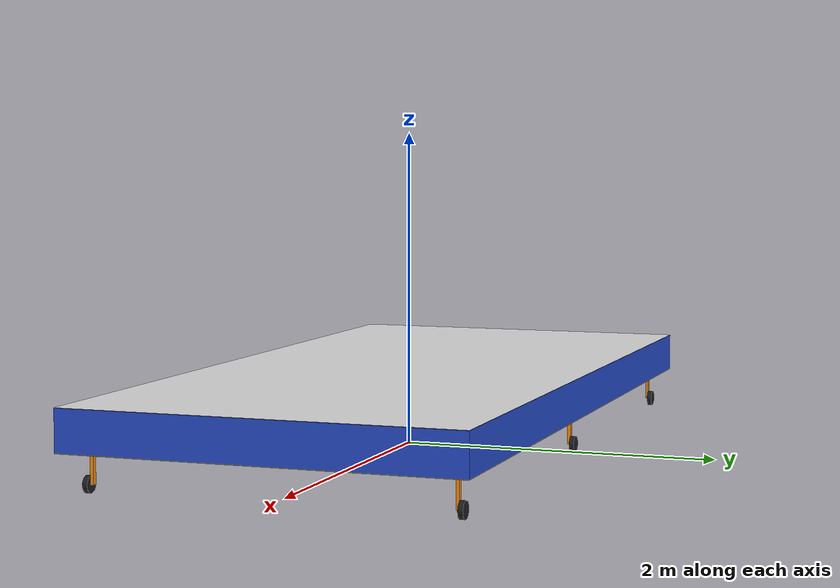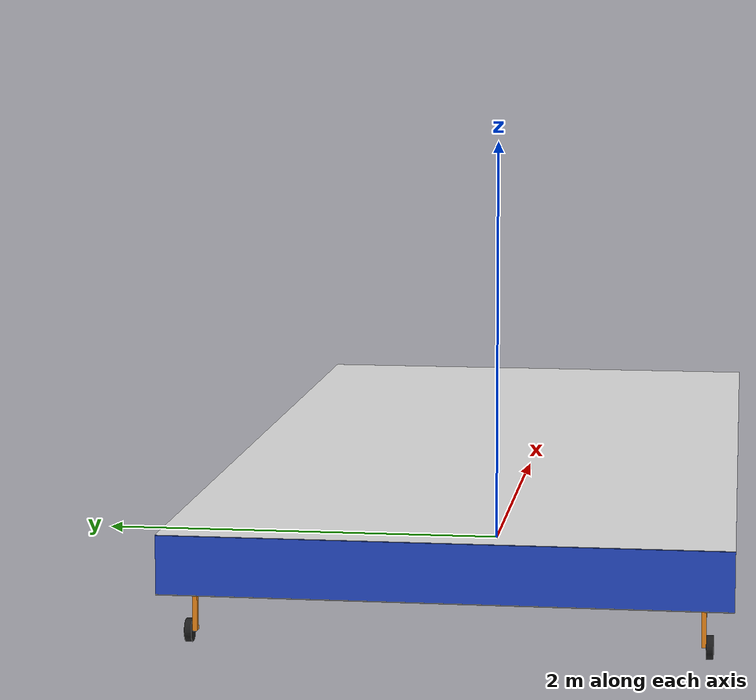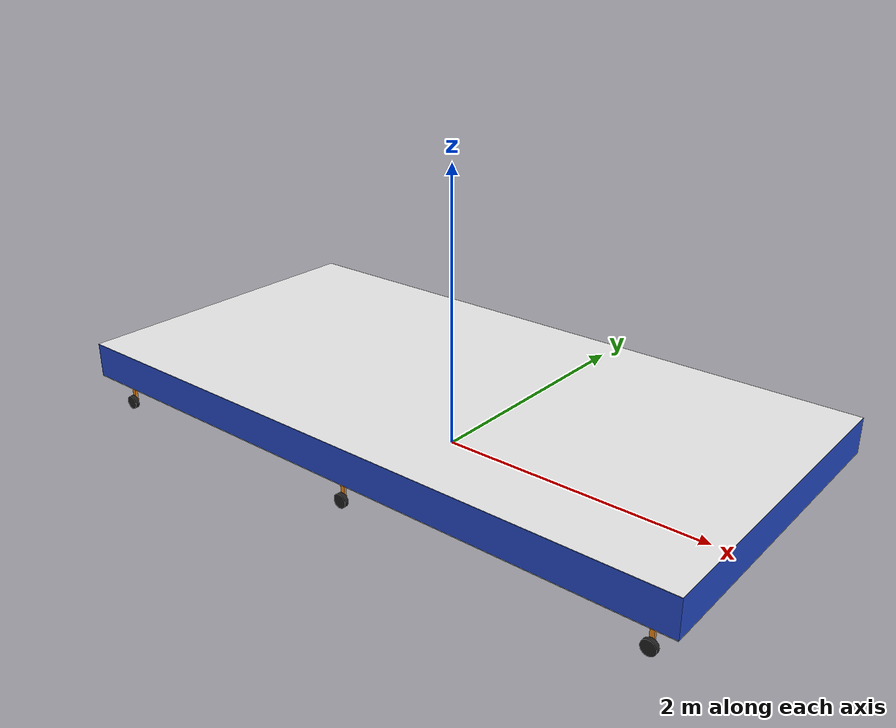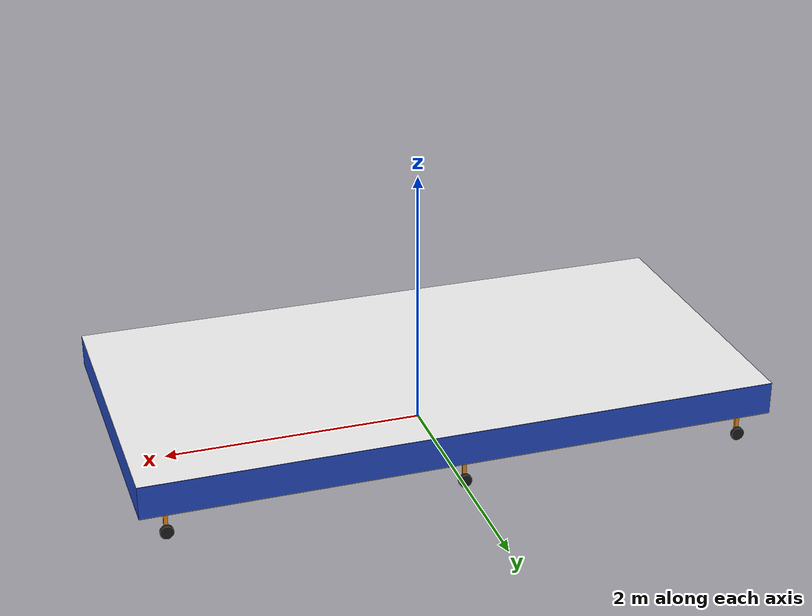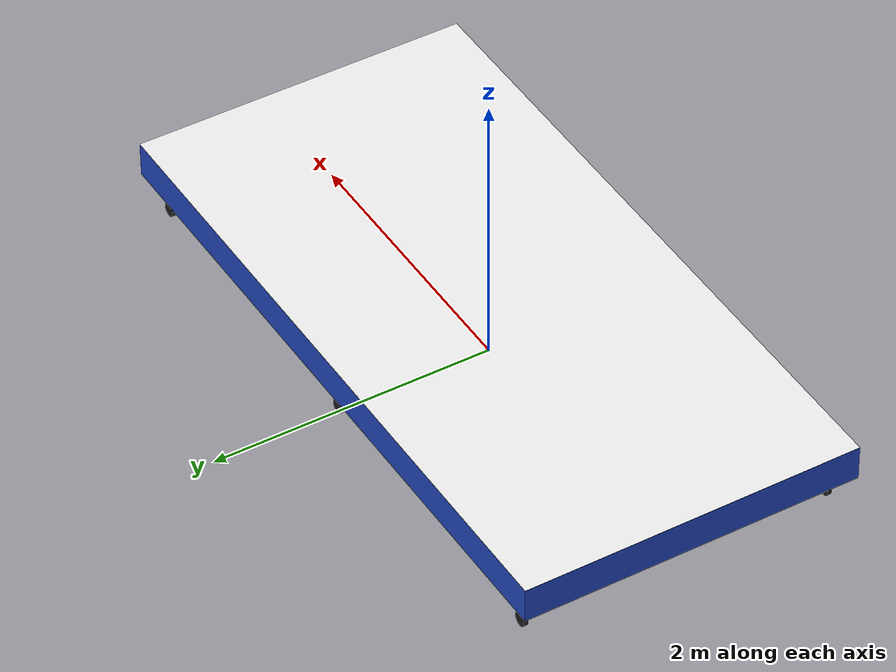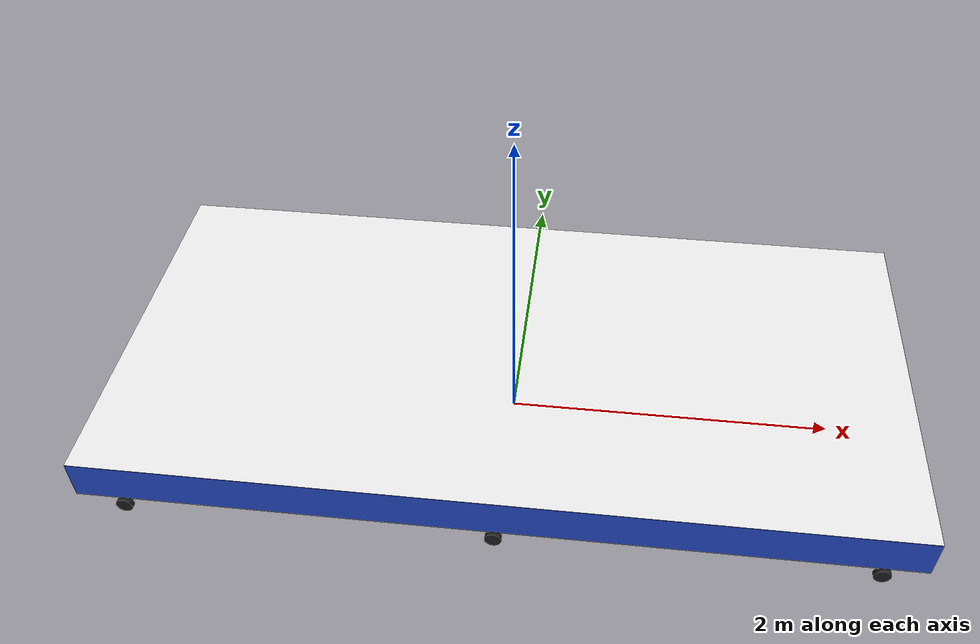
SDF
<?xml version='1.0'?>
<sdf version='1.6'>
  <model name='chassis'>
    <static>false</static>
    <link name='base_link'>
      <inertial>
        <pose>0 0 0.375 0 0 0</pose>
        <mass>120</mass>
        <inertia>
          <ixx>58.225</ixx>
          <ixy>0</ixy>
          <ixz>0</ixz>
          <iyy>231.025</iyy>
          <iyz>0</iyz>
          <izz>288</izz>
        </inertia>
      </inertial>
      <collision name='base0'>
        <pose>0 0 0.375 0 0 0</pose>
        <geometry>
          <box>
            <size>4.8 2.4 0.25</size>
          </box>
        </geometry>
        <surface>
          <friction>
            <ode>
              <mu>100</mu>
              <mu2>50</mu2>
            </ode>
          </friction>
        </surface>
      </collision>
      <visual name='base0'>
        <cast_shadows>1</cast_shadows>
        <pose>0 0 0.375 0 0 0</pose>
        <geometry>
          <box>
            <size>4.8 2.4 0.25</size>
          </box>
        </geometry>
        <material>
          <script>
            <uri>file://media/materials/scripts/gazebo.material</uri>
            <name>Gazebo/Blue</name>
          </script>
        </material>
      </visual>
      <visual name='base1'>
        <cast_shadows>0</cast_shadows>
        <pose>0 0 0.502 0 0 0</pose>
        <geometry>
          <plane>
            <normal>0 0 1</normal>
            <size>4.8 2.4</size>
          </plane>
        </geometry>
        <material>
          <script>
            <uri>file://media/materials/scripts/gazebo.material</uri>
            <name>Gazebo/White</name>
          </script>
        </material>
      </visual>
      <visual name='base2'>
        <cast_shadows>0</cast_shadows>
        <pose>0 0 0.248 3.1415926 0 0</pose>
        <geometry>
          <plane>
            <normal>0 0 1</normal>
            <size>4.8 2.4</size>
          </plane>
        </geometry>
        <material>
          <script>
            <uri>file://media/materials/scripts/gazebo.material</uri>
            <name>Gazebo/White</name>
          </script>
        </material>
      </visual>
    </link>

    <joint name="wheel_joint0" type="fixed">
      <parent>base_link</parent>
      <child>wheel_link0</child>
    </joint>
    <joint name="wheel_joint1" type="fixed">
      <parent>base_link</parent>
      <child>wheel_link1</child>
    </joint>
    <joint name="wheel_joint2" type="fixed">
      <parent>base_link</parent>
      <child>wheel_link2</child>
    </joint>
    <joint name="wheel_joint3" type="fixed">
      <parent>base_link</parent>
      <child>wheel_link3</child>
    </joint>
    <joint name="wheel_joint4" type="fixed">
      <parent>base_link</parent>
      <child>wheel_link4</child>
    </joint>
    <joint name="wheel_joint5" type="fixed">
      <parent>base_link</parent>
      <child>wheel_link5</child>
    </joint>

    <link name='wheel_link0'>
      <pose>2.2 1.1 0 0 0 0</pose>
      <collision name='wheel'>
        <pose>0 0 0.05 1.5707963 0 0</pose>
        <geometry>
          <cylinder>
            <radius>0.05</radius>
            <length>0.03</length>
          </cylinder>
        </geometry>
        <surface>
          <friction>
            <ode>
              <mu>100</mu>
              <mu2>50</mu2>
            </ode>
          </friction>
        </surface>
      </collision>
      <collision name='rod'>
        <pose>0 -0.025 0.15 0 0 0</pose>
        <geometry>
          <box>
            <size>0.03 0.02 0.2</size>
          </box>
        </geometry>
      </collision>
      <visual name='wheel'>
        <cast_shadows>0</cast_shadows>
        <pose>0 0 0.05 1.5707963 0 0</pose>
        <geometry>
          <cylinder>
            <radius>0.05</radius>
            <length>0.03</length>
          </cylinder>
        </geometry>
        <material>
          <script>
            <uri>file://media/materials/scripts/gazebo.material</uri>
            <name>Gazebo/Black</name>
          </script>
        </material>
      </visual>
      <visual name='rod'>
        <cast_shadows>0</cast_shadows>
        <pose>0 -0.025 0.15 0 0 0</pose>
        <geometry>
          <box>
            <size>0.03 0.02 0.2</size>
          </box>
        </geometry>
        <material>
          <script>
            <uri>file://media/materials/scripts/gazebo.material</uri>
            <name>Gazebo/Orange</name>
          </script>
        </material>
      </visual>
    </link>

    <link name='wheel_link1'>
      <pose>0 1.1 0 0 0 0</pose>
      <collision name='wheel'>
        <pose>0 0 0.05 1.5707963 0 0</pose>
        <geometry>
          <cylinder>
            <radius>0.05</radius>
            <length>0.03</length>
          </cylinder>
        </geometry>
        <surface>
          <friction>
            <ode>
              <mu>100</mu>
              <mu2>50</mu2>
            </ode>
          </friction>
        </surface>
      </collision>
      <collision name='rod'>
        <pose>0 -0.025 0.15 0 0 0</pose>
        <geometry>
          <box>
            <size>0.03 0.02 0.2</size>
          </box>
        </geometry>
      </collision>
      <visual name='wheel'>
        <cast_shadows>0</cast_shadows>
        <pose>0 0 0.05 1.5707963 0 0</pose>
        <geometry>
          <cylinder>
            <radius>0.05</radius>
            <length>0.03</length>
          </cylinder>
        </geometry>
        <material>
          <script>
            <uri>file://media/materials/scripts/gazebo.material</uri>
            <name>Gazebo/Black</name>
          </script>
        </material>
      </visual>
      <visual name='rod'>
        <cast_shadows>0</cast_shadows>
        <pose>0 -0.025 0.15 0 0 0</pose>
        <geometry>
          <box>
            <size>0.03 0.02 0.2</size>
          </box>
        </geometry>
        <material>
          <script>
            <uri>file://media/materials/scripts/gazebo.material</uri>
            <name>Gazebo/Orange</name>
          </script>
        </material>
      </visual>
    </link>

    <link name='wheel_link2'>
      <pose>-2.2 1.1 0 0 0 0</pose>
      <collision name='wheel'>
        <pose>0 0 0.05 1.5707963 0 0</pose>
        <geometry>
          <cylinder>
            <radius>0.05</radius>
            <length>0.03</length>
          </cylinder>
        </geometry>
        <surface>
          <friction>
            <ode>
              <mu>100</mu>
              <mu2>50</mu2>
            </ode>
          </friction>
        </surface>
      </collision>
      <collision name='rod'>
        <pose>0 -0.025 0.15 0 0 0</pose>
        <geometry>
          <box>
            <size>0.03 0.02 0.2</size>
          </box>
        </geometry>
      </collision>
      <visual name='wheel'>
        <cast_shadows>0</cast_shadows>
        <pose>0 0 0.05 1.5707963 0 0</pose>
        <geometry>
          <cylinder>
            <radius>0.05</radius>
            <length>0.03</length>
          </cylinder>
        </geometry>
        <material>
          <script>
            <uri>file://media/materials/scripts/gazebo.material</uri>
            <name>Gazebo/Black</name>
          </script>
        </material>
      </visual>
      <visual name='rod'>
        <cast_shadows>0</cast_shadows>
        <pose>0 -0.025 0.15 0 0 0</pose>
        <geometry>
          <box>
            <size>0.03 0.02 0.2</size>
          </box>
        </geometry>
        <material>
          <script>
            <uri>file://media/materials/scripts/gazebo.material</uri>
            <name>Gazebo/Orange</name>
          </script>
        </material>
      </visual>
    </link>

    <link name='wheel_link3'>
      <pose>-2.2 -1.1 0 0 0 3.1415926</pose>
      <collision name='wheel'>
        <pose>0 0 0.05 1.5707963 0 0</pose>
        <geometry>
          <cylinder>
            <radius>0.05</radius>
            <length>0.03</length>
          </cylinder>
        </geometry>
        <surface>
          <friction>
            <ode>
              <mu>100</mu>
              <mu2>50</mu2>
            </ode>
          </friction>
        </surface>
      </collision>
      <collision name='rod'>
        <pose>0 -0.025 0.15 0 0 0</pose>
        <geometry>
          <box>
            <size>0.03 0.02 0.2</size>
          </box>
        </geometry>
      </collision>
      <visual name='wheel'>
        <cast_shadows>0</cast_shadows>
        <pose>0 0 0.05 1.5707963 0 0</pose>
        <geometry>
          <cylinder>
            <radius>0.05</radius>
            <length>0.03</length>
          </cylinder>
        </geometry>
        <material>
          <script>
            <uri>file://media/materials/scripts/gazebo.material</uri>
            <name>Gazebo/Black</name>
          </script>
        </material>
      </visual>
      <visual name='rod'>
        <cast_shadows>0</cast_shadows>
        <pose>0 -0.025 0.15 0 0 0</pose>
        <geometry>
          <box>
            <size>0.03 0.02 0.2</size>
          </box>
        </geometry>
        <material>
          <script>
            <uri>file://media/materials/scripts/gazebo.material</uri>
            <name>Gazebo/Orange</name>
          </script>
        </material>
      </visual>
    </link>

    <link name='wheel_link4'>
      <pose>0.0 -1.1 0 0 0 3.1415926</pose>
      <collision name='wheel'>
        <pose>0 0 0.05 1.5707963 0 0</pose>
        <geometry>
          <cylinder>
            <radius>0.05</radius>
            <length>0.03</length>
          </cylinder>
        </geometry>
        <surface>
          <friction>
            <ode>
              <mu>100</mu>
              <mu2>50</mu2>
            </ode>
          </friction>
        </surface>
      </collision>
      <collision name='rod'>
        <pose>0 -0.025 0.15 0 0 0</pose>
        <geometry>
          <box>
            <size>0.03 0.02 0.2</size>
          </box>
        </geometry>
      </collision>
      <visual name='wheel'>
        <cast_shadows>0</cast_shadows>
        <pose>0 0 0.05 1.5707963 0 0</pose>
        <geometry>
          <cylinder>
            <radius>0.05</radius>
            <length>0.03</length>
          </cylinder>
        </geometry>
        <material>
          <script>
            <uri>file://media/materials/scripts/gazebo.material</uri>
            <name>Gazebo/Black</name>
          </script>
        </material>
      </visual>
      <visual name='rod'>
        <cast_shadows>0</cast_shadows>
        <pose>0 -0.025 0.15 0 0 0</pose>
        <geometry>
          <box>
            <size>0.03 0.02 0.2</size>
          </box>
        </geometry>
        <material>
          <script>
            <uri>file://media/materials/scripts/gazebo.material</uri>
            <name>Gazebo/Orange</name>
          </script>
        </material>
      </visual>
    </link>

    <link name='wheel_link5'>
      <pose>2.2 -1.1 0 0 0 3.1415926</pose>
      <collision name='wheel'>
        <pose>0 0 0.05 1.5707963 0 0</pose>
        <geometry>
          <cylinder>
            <radius>0.05</radius>
            <length>0.03</length>
          </cylinder>
        </geometry>
        <surface>
          <friction>
            <ode>
              <mu>100</mu>
              <mu2>50</mu2>
            </ode>
          </friction>
        </surface>
      </collision>
      <collision name='rod'>
        <pose>0 -0.025 0.15 0 0 0</pose>
        <geometry>
          <box>
            <size>0.03 0.02 0.2</size>
          </box>
        </geometry>
      </collision>
      <visual name='wheel'>
        <cast_shadows>0</cast_shadows>
        <pose>0 0 0.05 1.5707963 0 0</pose>
        <geometry>
          <cylinder>
            <radius>0.05</radius>
            <length>0.03</length>
          </cylinder>
        </geometry>
        <material>
          <script>
            <uri>file://media/materials/scripts/gazebo.material</uri>
            <name>Gazebo/Black</name>
          </script>
        </material>
      </visual>
      <visual name='rod'>
        <cast_shadows>0</cast_shadows>
        <pose>0 -0.025 0.15 0 0 0</pose>
        <geometry>
          <box>
            <size>0.03 0.02 0.2</size>
          </box>
        </geometry>
        <material>
          <script>
            <uri>file://media/materials/scripts/gazebo.material</uri>
            <name>Gazebo/Orange</name>
          </script>
        </material>
      </visual>
    </link>
  </model>
</sdf>
